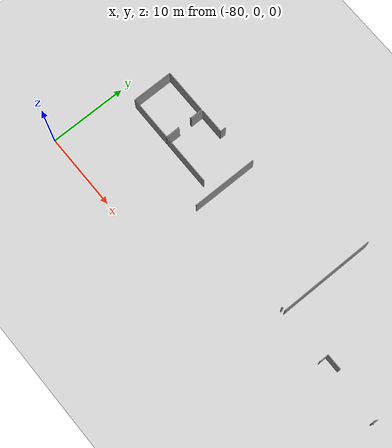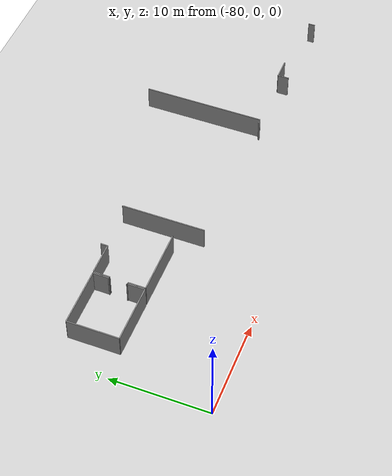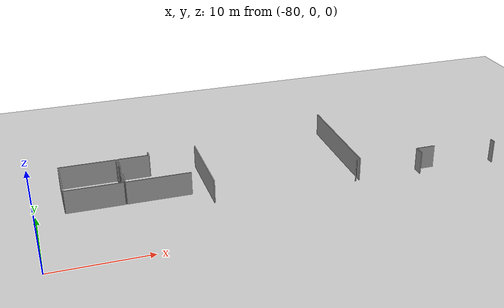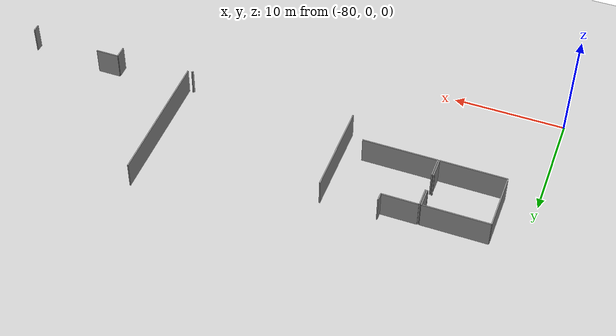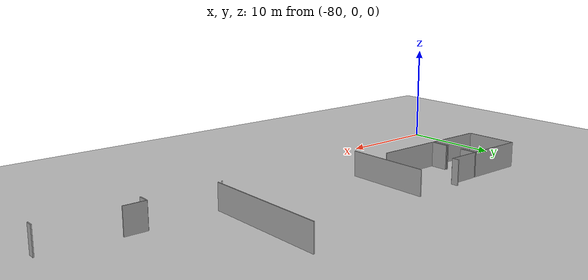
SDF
<sdf version="1.6">
 <world name="default">
  <model name="ground_plane">
   <static>1</static>
   <link name="link">
    <collision name="collision">
     <geometry><plane><normal>0 0 1</normal><size>100 100</size></plane></geometry>
     <surface><friction><ode><mu>100</mu><mu2>50</mu2></ode></friction></surface>
    </collision>
    <visual name="visual">
     <cast_shadows>0</cast_shadows>
     <geometry><plane><normal>0 0 1</normal><size>100 100</size></plane></geometry>
     <material>
      <script><uri>file://media/materials/scripts/gazebo.material</uri><name>Gazebo/Grey</name></script>
     </material>
    </visual>
   </link>
  </model>
  <model name="0510035739_A_40_1_102">
   <static>1</static>
   <link name="Wall_150">
    <collision name="Wall_150_Collision">
     <geometry><box><size>0.0435572797333 0.1 2.5</size></box></geometry>
     <pose>0.0217786398666 0 1.25 0 0 0</pose>
    </collision>
    <visual name="Wall_150_Visual">
     <pose>0.0217786398666 0 1.25 0 0 0</pose>
     <geometry><box><size>0.0435572797333 0.1 2.5</size></box></geometry>
     <material>
      <script><uri>file://media/materials/scripts/gazebo.material</uri><name>Gazebo/Grey</name></script>
      <ambient>1 1 1 1</ambient>
     </material>
    </visual>
    <pose>21.4492856988 -34.5717440615 0 0 0 1.57079632679</pose>
   </link>
   <link name="Wall_151">
    <collision name="Wall_151_Collision">
     <geometry><box><size>3.26246572411 0.1 2.5</size></box></geometry>
     <pose>1.63123286206 0 1.25 0 0 0</pose>
    </collision>
    <visual name="Wall_151_Visual">
     <pose>1.63123286206 0 1.25 0 0 0</pose>
     <geometry><box><size>3.26246572411 0.1 2.5</size></box></geometry>
     <material>
      <script><uri>file://media/materials/scripts/gazebo.material</uri><name>Gazebo/Grey</name></script>
      <ambient>1 1 1 1</ambient>
     </material>
    </visual>
    <pose>21.4492856988 -34.5281867818 0 0 0 0.0</pose>
   </link>
   <link name="Wall_152">
    <collision name="Wall_152_Collision">
     <geometry><box><size>0.713728057384 0.1 2.5</size></box></geometry>
     <pose>0.356864028692 0 1.25 0 0 0</pose>
    </collision>
    <visual name="Wall_152_Visual">
     <pose>0.356864028692 0 1.25 0 0 0</pose>
     <geometry><box><size>0.713728057384 0.1 2.5</size></box></geometry>
     <material>
      <script><uri>file://media/materials/scripts/gazebo.material</uri><name>Gazebo/Grey</name></script>
      <ambient>1 1 1 1</ambient>
     </material>
    </visual>
    <pose>24.7117514229 -34.5281867818 0 0 0 1.57079632679</pose>
   </link>
   <link name="Wall_162">
    <collision name="Wall_162_Collision">
     <geometry><box><size>6.66477324106 0.1 2.5</size></box></geometry>
     <pose>3.33238662053 0 1.25 0 0 0</pose>
    </collision>
    <visual name="Wall_162_Visual">
     <pose>3.33238662053 0 1.25 0 0 0</pose>
     <geometry><box><size>6.66477324106 0.1 2.5</size></box></geometry>
     <material>
      <script><uri>file://media/materials/scripts/gazebo.material</uri><name>Gazebo/Grey</name></script>
      <ambient>1 1 1 1</ambient>
     </material>
    </visual>
    <pose>28.0615864274 -39.8118631181 0 0 0 3.14159265359</pose>
   </link>
   <link name="Wall_163">
    <collision name="Wall_163_Collision">
     <geometry><box><size>1.78253709692 0.1 2.5</size></box></geometry>
     <pose>0.89126854846 0 1.25 0 0 0</pose>
    </collision>
    <visual name="Wall_163_Visual">
     <pose>0.89126854846 0 1.25 0 0 0</pose>
     <geometry><box><size>1.78253709692 0.1 2.5</size></box></geometry>
     <material>
      <script><uri>file://media/materials/scripts/gazebo.material</uri><name>Gazebo/Grey</name></script>
      <ambient>1 1 1 1</ambient>
     </material>
    </visual>
    <pose>21.3968131864 -39.8118631181 0 0 0 1.57079632679</pose>
   </link>
   <link name="Wall_164">
    <collision name="Wall_164_Collision">
     <geometry><box><size>1.70713970042 0.1 2.5</size></box></geometry>
     <pose>0.853569850211 0 1.25 0 0 0</pose>
    </collision>
    <visual name="Wall_164_Visual">
     <pose>0.853569850211 0 1.25 0 0 0</pose>
     <geometry><box><size>1.70713970042 0.1 2.5</size></box></geometry>
     <material>
      <script><uri>file://media/materials/scripts/gazebo.material</uri><name>Gazebo/Grey</name></script>
      <ambient>1 1 1 1</ambient>
     </material>
    </visual>
    <pose>21.3968131864 -36.2330339938 0 0 0 1.57079632679</pose>
   </link>
   <link name="Wall_166">
    <collision name="Wall_166_Collision">
     <geometry><box><size>5.23986433563 0.1 2.5</size></box></geometry>
     <pose>2.61993216782 0 1.25 0 0 0</pose>
    </collision>
    <visual name="Wall_166_Visual">
     <pose>2.61993216782 0 1.25 0 0 0</pose>
     <geometry><box><size>5.23986433563 0.1 2.5</size></box></geometry>
     <material>
      <script><uri>file://media/materials/scripts/gazebo.material</uri><name>Gazebo/Grey</name></script>
      <ambient>1 1 1 1</ambient>
     </material>
    </visual>
    <pose>15.3589081642 -39.7988723504 0 0 0 1.57079632679</pose>
   </link>
   <link name="Wall_167">
    <collision name="Wall_167_Collision">
     <geometry><box><size>5.8960254619 0.1 2.5</size></box></geometry>
     <pose>2.94801273095 0 1.25 0 0 0</pose>
    </collision>
    <visual name="Wall_167_Visual">
     <pose>2.94801273095 0 1.25 0 0 0</pose>
     <geometry><box><size>5.8960254619 0.1 2.5</size></box></geometry>
     <material>
      <script><uri>file://media/materials/scripts/gazebo.material</uri><name>Gazebo/Grey</name></script>
      <ambient>1 1 1 1</ambient>
     </material>
    </visual>
    <pose>15.3589081642 -34.5590080148 0 0 0 0.0</pose>
   </link>
   <link name="Wall_168">
    <collision name="Wall_168_Collision">
     <geometry><box><size>1.61875153629 0.1 2.5</size></box></geometry>
     <pose>0.809375768143 0 1.25 0 0 0</pose>
    </collision>
    <visual name="Wall_168_Visual">
     <pose>0.809375768143 0 1.25 0 0 0</pose>
     <geometry><box><size>1.61875153629 0.1 2.5</size></box></geometry>
     <material>
      <script><uri>file://media/materials/scripts/gazebo.material</uri><name>Gazebo/Grey</name></script>
      <ambient>1 1 1 1</ambient>
     </material>
    </visual>
    <pose>21.2549336261 -34.5590080148 0 0 0 -1.57079632679</pose>
   </link>
   <link name="Wall_169">
    <collision name="Wall_169_Collision">
     <geometry><box><size>0.0990864433698 0.1 2.5</size></box></geometry>
     <pose>0.0495432216849 0 1.25 0 0 0</pose>
    </collision>
    <visual name="Wall_169_Visual">
     <pose>0.0495432216849 0 1.25 0 0 0</pose>
     <geometry><box><size>0.0990864433698 0.1 2.5</size></box></geometry>
     <material>
      <script><uri>file://media/materials/scripts/gazebo.material</uri><name>Gazebo/Grey</name></script>
      <ambient>1 1 1 1</ambient>
     </material>
    </visual>
    <pose>21.2549336261 -36.1777595511 0 0 0 3.14159265359</pose>
   </link>
   <link name="Wall_170">
    <collision name="Wall_170_Collision">
     <geometry><box><size>0.101888373645 0.1 2.5</size></box></geometry>
     <pose>0.0509441868225 0 1.25 0 0 0</pose>
    </collision>
    <visual name="Wall_170_Visual">
     <pose>0.0509441868225 0 1.25 0 0 0</pose>
     <geometry><box><size>0.101888373645 0.1 2.5</size></box></geometry>
     <material>
      <script><uri>file://media/materials/scripts/gazebo.material</uri><name>Gazebo/Grey</name></script>
      <ambient>1 1 1 1</ambient>
     </material>
    </visual>
    <pose>21.1558471827 -38.0265240909 0 0 0 0.0</pose>
   </link>
   <link name="Wall_171">
    <collision name="Wall_171_Collision">
     <geometry><box><size>1.7883956784 0.1 2.5</size></box></geometry>
     <pose>0.894197839202 0 1.25 0 0 0</pose>
    </collision>
    <visual name="Wall_171_Visual">
     <pose>0.894197839202 0 1.25 0 0 0</pose>
     <geometry><box><size>1.7883956784 0.1 2.5</size></box></geometry>
     <material>
      <script><uri>file://media/materials/scripts/gazebo.material</uri><name>Gazebo/Grey</name></script>
      <ambient>1 1 1 1</ambient>
     </material>
    </visual>
    <pose>21.2577355564 -38.0265240909 0 0 0 -1.57079632679</pose>
   </link>
   <link name="Wall_172">
    <collision name="Wall_172_Collision">
     <geometry><box><size>5.89884922018 0.1 2.5</size></box></geometry>
     <pose>2.94942461009 0 1.25 0 0 0</pose>
    </collision>
    <visual name="Wall_172_Visual">
     <pose>2.94942461009 0 1.25 0 0 0</pose>
     <geometry><box><size>5.89884922018 0.1 2.5</size></box></geometry>
     <material>
      <script><uri>file://media/materials/scripts/gazebo.material</uri><name>Gazebo/Grey</name></script>
      <ambient>1 1 1 1</ambient>
     </material>
    </visual>
    <pose>21.2577355564 -39.8149197693 0 0 0 3.13887221812</pose>
   </link>
   <link name="Wall_175">
    <collision name="Wall_175_Collision">
     <geometry><box><size>8.48806568743 0.1 2.5</size></box></geometry>
     <pose>4.24403284372 0 1.25 0 0 0</pose>
    </collision>
    <visual name="Wall_175_Visual">
     <pose>4.24403284372 0 1.25 0 0 0</pose>
     <geometry><box><size>8.48806568743 0.1 2.5</size></box></geometry>
     <material>
      <script><uri>file://media/materials/scripts/gazebo.material</uri><name>Gazebo/Grey</name></script>
      <ambient>1 1 1 1</ambient>
     </material>
    </visual>
    <pose>29.7860471514 -42.3463364125 0 0 0 1.57079632679</pose>
   </link>
   <link name="Wall_193">
    <collision name="Wall_193_Collision">
     <geometry><box><size>0.182437812112 0.1 2.5</size></box></geometry>
     <pose>0.0912189060558 0 1.25 0 0 0</pose>
    </collision>
    <visual name="Wall_193_Visual">
     <pose>0.0912189060558 0 1.25 0 0 0</pose>
     <geometry><box><size>0.182437812112 0.1 2.5</size></box></geometry>
     <material>
      <script><uri>file://media/materials/scripts/gazebo.material</uri><name>Gazebo/Grey</name></script>
      <ambient>1 1 1 1</ambient>
     </material>
    </visual>
    <pose>45.1105679895 -42.3448080869 0 0 0 -2.23943180629</pose>
   </link>
   <link name="Wall_240">
    <collision name="Wall_240_Collision">
     <geometry><box><size>12.3529464207 0.1 2.5</size></box></geometry>
     <pose>6.17647321036 0 1.25 0 0 0</pose>
    </collision>
    <visual name="Wall_240_Visual">
     <pose>6.17647321036 0 1.25 0 0 0</pose>
     <geometry><box><size>12.3529464207 0.1 2.5</size></box></geometry>
     <material>
      <script><uri>file://media/materials/scripts/gazebo.material</uri><name>Gazebo/Grey</name></script>
      <ambient>1 1 1 1</ambient>
     </material>
    </visual>
    <pose>45.4895927394 -42.3718085059 0 0 0 1.57079632679</pose>
   </link>
   <link name="Wall_247">
    <collision name="Wall_247_Collision">
     <geometry><box><size>0.685454033697 0.1 2.5</size></box></geometry>
     <pose>0.342727016849 0 1.25 0 0 0</pose>
    </collision>
    <visual name="Wall_247_Visual">
     <pose>0.342727016849 0 1.25 0 0 0</pose>
     <geometry><box><size>0.685454033697 0.1 2.5</size></box></geometry>
     <material>
      <script><uri>file://media/materials/scripts/gazebo.material</uri><name>Gazebo/Grey</name></script>
      <ambient>1 1 1 1</ambient>
     </material>
    </visual>
    <pose>61.0754572559 -42.3970258784 0 0 0 -1.57079632679</pose>
   </link>
   <link name="Wall_253">
    <collision name="Wall_253_Collision">
     <geometry><box><size>2.09329663654 0.1 2.5</size></box></geometry>
     <pose>1.04664831827 0 1.25 0 0 0</pose>
    </collision>
    <visual name="Wall_253_Visual">
     <pose>1.04664831827 0 1.25 0 0 0</pose>
     <geometry><box><size>2.09329663654 0.1 2.5</size></box></geometry>
     <material>
      <script><uri>file://media/materials/scripts/gazebo.material</uri><name>Gazebo/Grey</name></script>
      <ambient>1 1 1 1</ambient>
     </material>
    </visual>
    <pose>54.3699286654 -41.9372545923 0 0 0 3.14159265359</pose>
   </link>
   <link name="Wall_254">
    <collision name="Wall_254_Collision">
     <geometry><box><size>1.1342723196 0.1 2.5</size></box></geometry>
     <pose>0.567136159802 0 1.25 0 0 0</pose>
    </collision>
    <visual name="Wall_254_Visual">
     <pose>0.567136159802 0 1.25 0 0 0</pose>
     <geometry><box><size>1.1342723196 0.1 2.5</size></box></geometry>
     <material>
      <script><uri>file://media/materials/scripts/gazebo.material</uri><name>Gazebo/Grey</name></script>
      <ambient>1 1 1 1</ambient>
     </material>
    </visual>
    <pose>52.2766320289 -41.9372545923 0 0 0 -1.57079632679</pose>
   </link>
   <pose>-92.5 49.8157534709 0 0 0 0</pose>
  </model>
 </world>
</sdf>
